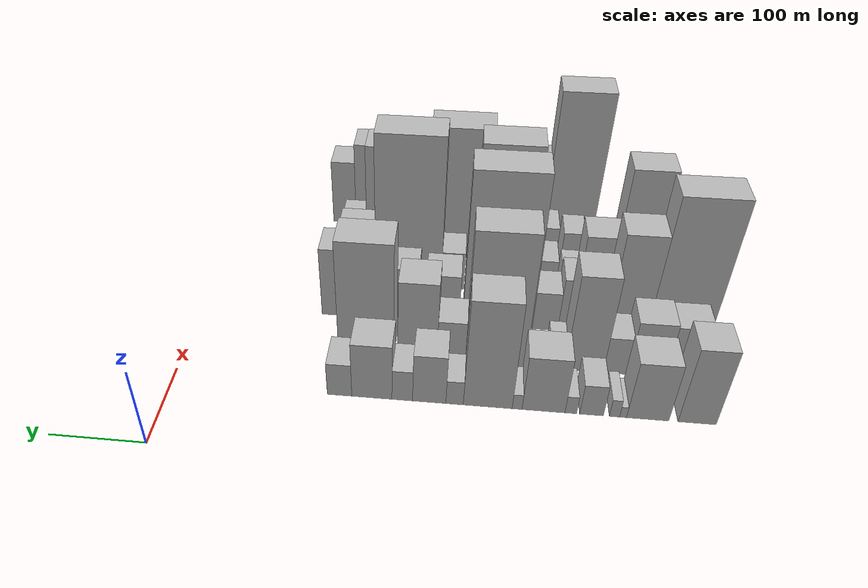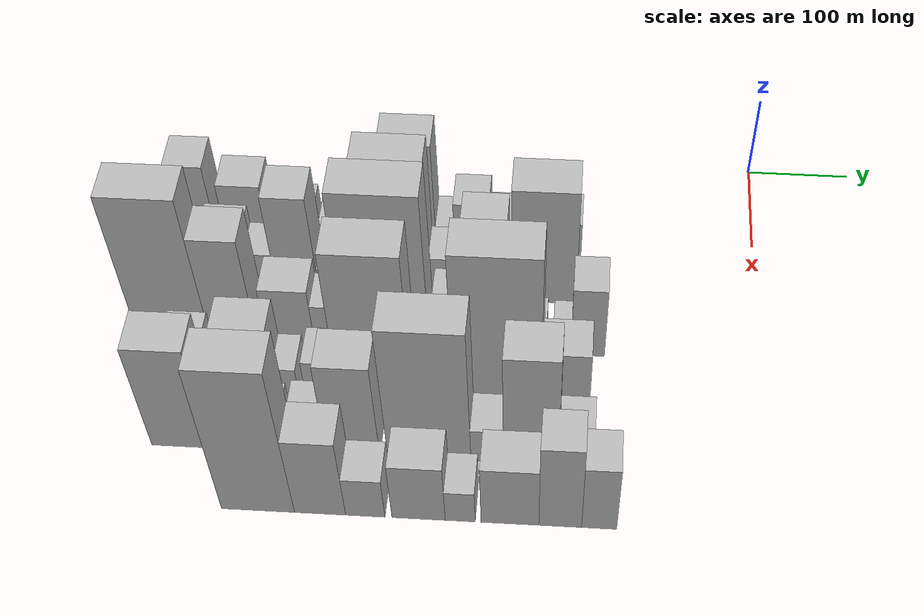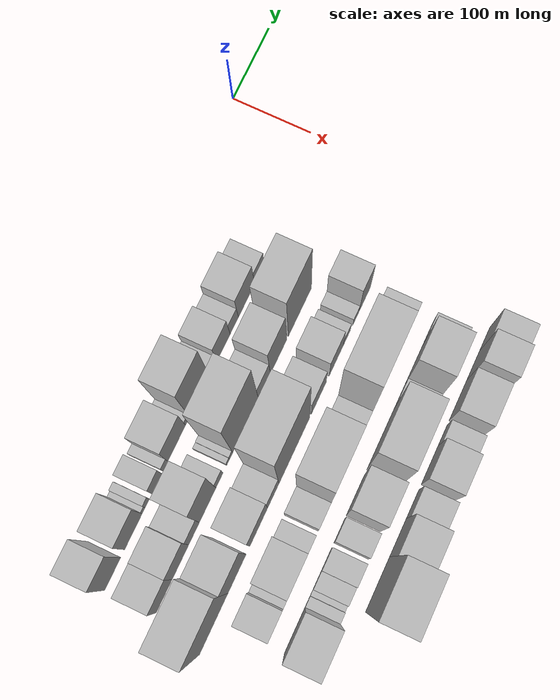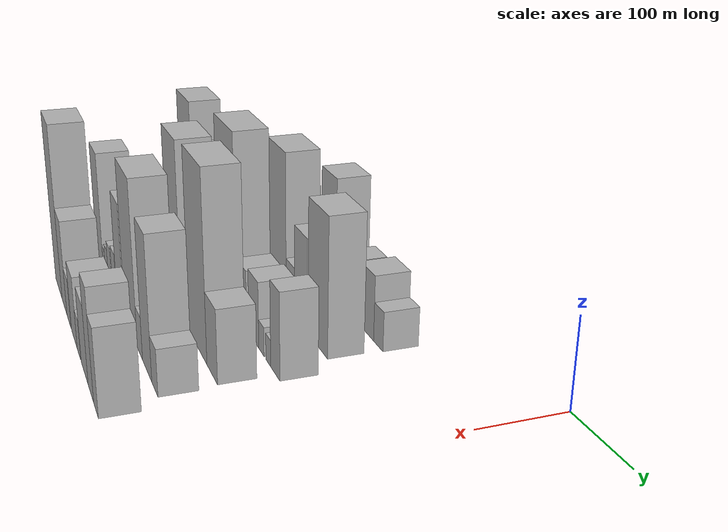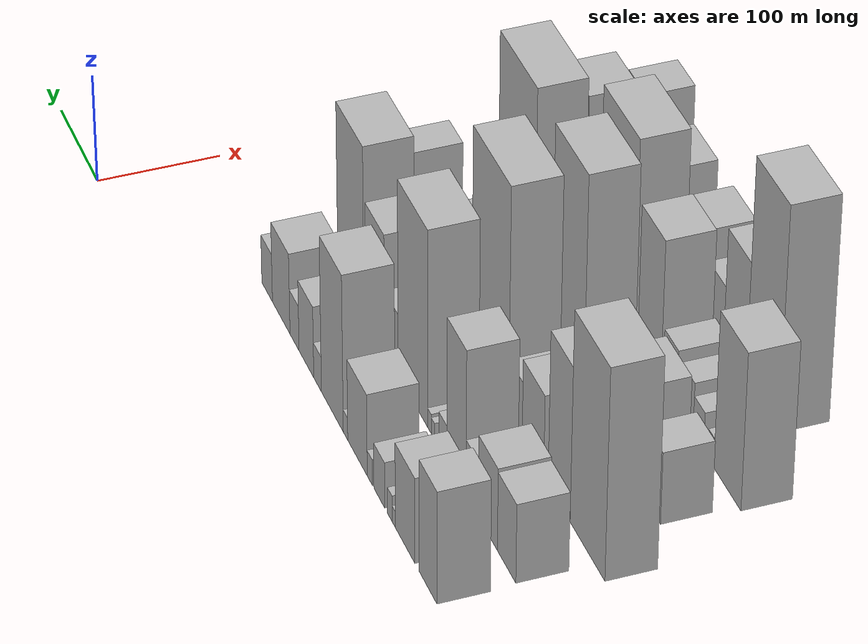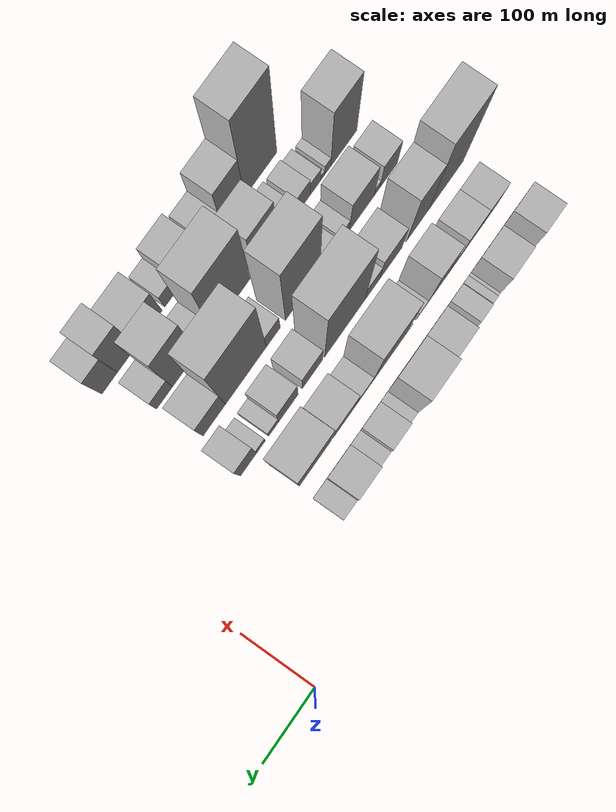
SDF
<sdf version="1.6">
 <world name="default">
  <model name="building_14">
   <static>1</static>
   <pose>100.0000 -543.6036 0 0.000000 0.000000 0.000000</pose>
   <link name="link">
    <pose>0 0 51.00 0 0 0</pose>
    <collision name="collision"><geometry><box><size>40.0000 37.5488 102.0000</size></box></geometry></collision>
    <visual name="visual">
     <cast_shadows>0</cast_shadows>
     <geometry><box><size>40.0000 37.5488 102.0000</size></box></geometry>
     <material>
      <script>
       <uri>model://HANNAS_wall/materials/scripts</uri>
       <uri>model://HANNAS_wall/materials/textures</uri>
       <name>vrc/HANNAS_wall</name>
      </script>
     </material>
    </visual>
   </link>
  </model>
  <model name="building_15">
   <static>1</static>
   <pose>100.0000 -494.8130 0 0.000000 0.000000 0.000000</pose>
   <link name="link">
    <pose>0 0 39.00 0 0 0</pose>
    <collision name="collision"><geometry><box><size>40.0000 42.0324 78.0000</size></box></geometry></collision>
    <visual name="visual">
     <cast_shadows>0</cast_shadows>
     <geometry><box><size>40.0000 42.0324 78.0000</size></box></geometry>
     <material>
      <script>
       <uri>model://HANNAS_wall/materials/scripts</uri>
       <uri>model://HANNAS_wall/materials/textures</uri>
       <name>vrc/HANNAS_wall</name>
      </script>
     </material>
    </visual>
   </link>
  </model>
  <model name="building_16">
   <static>1</static>
   <pose>100.0000 -470.3629 0 0.000000 0.000000 0.000000</pose>
   <link name="link">
    <pose>0 0 7.50 0 0 0</pose>
    <collision name="collision"><geometry><box><size>40.0000 6.8678 15.0000</size></box></geometry></collision>
    <visual name="visual">
     <cast_shadows>0</cast_shadows>
     <geometry><box><size>40.0000 6.8678 15.0000</size></box></geometry>
     <material>
      <script>
       <uri>model://HANNAS_wall/materials/scripts</uri>
       <uri>model://HANNAS_wall/materials/textures</uri>
       <name>vrc/HANNAS_wall</name>
      </script>
     </material>
    </visual>
   </link>
  </model>
  <model name="building_17">
   <static>1</static>
   <pose>100.0000 -461.8193 0 0.000000 0.000000 0.000000</pose>
   <link name="link">
    <pose>0 0 12.00 0 0 0</pose>
    <collision name="collision"><geometry><box><size>40.0000 10.2193 24.0000</size></box></geometry></collision>
    <visual name="visual">
     <cast_shadows>0</cast_shadows>
     <geometry><box><size>40.0000 10.2193 24.0000</size></box></geometry>
     <material>
      <script>
       <uri>model://HANNAS_wall/materials/scripts</uri>
       <uri>model://HANNAS_wall/materials/textures</uri>
       <name>vrc/HANNAS_wall</name>
      </script>
     </material>
    </visual>
   </link>
  </model>
  <model name="building_18">
   <static>1</static>
   <pose>100.0000 -438.7839 0 0.000000 0.000000 0.000000</pose>
   <link name="link">
    <pose>0 0 21.00 0 0 0</pose>
    <collision name="collision"><geometry><box><size>40.0000 23.8515 42.0000</size></box></geometry></collision>
    <visual name="visual">
     <cast_shadows>0</cast_shadows>
     <geometry><box><size>40.0000 23.8515 42.0000</size></box></geometry>
     <material>
      <script>
       <uri>model://HANNAS_wall/materials/scripts</uri>
       <uri>model://HANNAS_wall/materials/textures</uri>
       <name>vrc/HANNAS_wall</name>
      </script>
     </material>
    </visual>
   </link>
  </model>
  <model name="building_19">
   <static>1</static>
   <pose>100.0000 -417.9926 0 0.000000 0.000000 0.000000</pose>
   <link name="link">
    <pose>0 0 12.00 0 0 0</pose>
    <collision name="collision"><geometry><box><size>40.0000 11.7311 24.0000</size></box></geometry></collision>
    <visual name="visual">
     <cast_shadows>0</cast_shadows>
     <geometry><box><size>40.0000 11.7311 24.0000</size></box></geometry>
     <material>
      <script>
       <uri>model://HANNAS_wall/materials/scripts</uri>
       <uri>model://HANNAS_wall/materials/textures</uri>
       <name>vrc/HANNAS_wall</name>
      </script>
     </material>
    </visual>
   </link>
  </model>
  <model name="building_20">
   <static>1</static>
   <pose>100.0000 -390.3677 0 0.000000 0.000000 0.000000</pose>
   <link name="link">
    <pose>0 0 37.50 0 0 0</pose>
    <collision name="collision"><geometry><box><size>40.0000 43.5187 75.0000</size></box></geometry></collision>
    <visual name="visual">
     <cast_shadows>0</cast_shadows>
     <geometry><box><size>40.0000 43.5187 75.0000</size></box></geometry>
     <material>
      <script>
       <uri>model://HANNAS_wall/materials/scripts</uri>
       <uri>model://HANNAS_wall/materials/textures</uri>
       <name>vrc/HANNAS_wall</name>
      </script>
     </material>
    </visual>
   </link>
  </model>
  <model name="building_21">
   <static>1</static>
   <pose>100.0000 -363.5932 0 0.000000 0.000000 0.000000</pose>
   <link name="link">
    <pose>0 0 10.50 0 0 0</pose>
    <collision name="collision"><geometry><box><size>40.0000 10.0303 21.0000</size></box></geometry></collision>
    <visual name="visual">
     <cast_shadows>0</cast_shadows>
     <geometry><box><size>40.0000 10.0303 21.0000</size></box></geometry>
     <material>
      <script>
       <uri>model://HANNAS_wall/materials/scripts</uri>
       <uri>model://HANNAS_wall/materials/textures</uri>
       <name>vrc/HANNAS_wall</name>
      </script>
     </material>
    </visual>
   </link>
  </model>
  <model name="building_22">
   <static>1</static>
   <pose>100.0000 -333.5558 0 0.000000 0.000000 0.000000</pose>
   <link name="link">
    <pose>0 0 72.00 0 0 0</pose>
    <collision name="collision"><geometry><box><size>40.0000 50.0446 144.0000</size></box></geometry></collision>
    <visual name="visual">
     <cast_shadows>0</cast_shadows>
     <geometry><box><size>40.0000 50.0446 144.0000</size></box></geometry>
     <material>
      <script>
       <uri>model://HANNAS_wall/materials/scripts</uri>
       <uri>model://HANNAS_wall/materials/textures</uri>
       <name>vrc/HANNAS_wall</name>
      </script>
     </material>
    </visual>
   </link>
  </model>
  <model name="building_23">
   <static>1</static>
   <pose>100.0000 -299.5866 0 0.000000 0.000000 0.000000</pose>
   <link name="link">
    <pose>0 0 16.50 0 0 0</pose>
    <collision name="collision"><geometry><box><size>40.0000 17.8937 33.0000</size></box></geometry></collision>
    <visual name="visual">
     <cast_shadows>0</cast_shadows>
     <geometry><box><size>40.0000 17.8937 33.0000</size></box></geometry>
     <material>
      <script>
       <uri>model://HANNAS_wall/materials/scripts</uri>
       <uri>model://HANNAS_wall/materials/textures</uri>
       <name>vrc/HANNAS_wall</name>
      </script>
     </material>
    </visual>
   </link>
  </model>
  <model name="building_24">
   <static>1</static>
   <pose>100.0000 -273.4221 0 0.000000 0.000000 0.000000</pose>
   <link name="link">
    <pose>0 0 33.00 0 0 0</pose>
    <collision name="collision"><geometry><box><size>40.0000 34.4352 66.0000</size></box></geometry></collision>
    <visual name="visual">
     <cast_shadows>0</cast_shadows>
     <geometry><box><size>40.0000 34.4352 66.0000</size></box></geometry>
     <material>
      <script>
       <uri>model://HANNAS_wall/materials/scripts</uri>
       <uri>model://HANNAS_wall/materials/textures</uri>
       <name>vrc/HANNAS_wall</name>
      </script>
     </material>
    </visual>
   </link>
  </model>
  <model name="building_25">
   <static>1</static>
   <pose>100.0000 -245.4888 0 0.000000 0.000000 0.000000</pose>
   <link name="link">
    <pose>0 0 21.00 0 0 0</pose>
    <collision name="collision"><geometry><box><size>40.0000 21.4315 42.0000</size></box></geometry></collision>
    <visual name="visual">
     <cast_shadows>0</cast_shadows>
     <geometry><box><size>40.0000 21.4315 42.0000</size></box></geometry>
     <material>
      <script>
       <uri>model://HANNAS_wall/materials/scripts</uri>
       <uri>model://HANNAS_wall/materials/textures</uri>
       <name>vrc/HANNAS_wall</name>
      </script>
     </material>
    </visual>
   </link>
  </model>
  <model name="building_26">
   <static>1</static>
   <pose>100.0000 -213.7672 0 0.000000 0.000000 0.000000</pose>
   <link name="link">
    <pose>0 0 37.50 0 0 0</pose>
    <collision name="collision"><geometry><box><size>40.0000 42.0117 75.0000</size></box></geometry></collision>
    <visual name="visual">
     <cast_shadows>0</cast_shadows>
     <geometry><box><size>40.0000 42.0117 75.0000</size></box></geometry>
     <material>
      <script>
       <uri>model://HANNAS_wall/materials/scripts</uri>
       <uri>model://HANNAS_wall/materials/textures</uri>
       <name>vrc/HANNAS_wall</name>
      </script>
     </material>
    </visual>
   </link>
  </model>
  <model name="building_27">
   <static>1</static>
   <pose>100.0000 -179.8913 0 0.000000 0.000000 0.000000</pose>
   <link name="link">
    <pose>0 0 22.50 0 0 0</pose>
    <collision name="collision"><geometry><box><size>40.0000 25.7401 45.0000</size></box></geometry></collision>
    <visual name="visual">
     <cast_shadows>0</cast_shadows>
     <geometry><box><size>40.0000 25.7401 45.0000</size></box></geometry>
     <material>
      <script>
       <uri>model://HANNAS_wall/materials/scripts</uri>
       <uri>model://HANNAS_wall/materials/textures</uri>
       <name>vrc/HANNAS_wall</name>
      </script>
     </material>
    </visual>
   </link>
  </model>
  <model name="building_75">
   <static>1</static>
   <pose>160.0000 -540.9956 0 0.000000 0.000000 0.000000</pose>
   <link name="link">
    <pose>0 0 36.00 0 0 0</pose>
    <collision name="collision"><geometry><box><size>40.0000 37.8072 72.0000</size></box></geometry></collision>
    <visual name="visual">
     <cast_shadows>0</cast_shadows>
     <geometry><box><size>40.0000 37.8072 72.0000</size></box></geometry>
     <material>
      <script>
       <uri>model://HANNAS_wall/materials/scripts</uri>
       <uri>model://HANNAS_wall/materials/textures</uri>
       <name>vrc/HANNAS_wall</name>
      </script>
     </material>
    </visual>
   </link>
  </model>
  <model name="building_76">
   <static>1</static>
   <pose>160.0000 -502.1628 0 0.000000 0.000000 0.000000</pose>
   <link name="link">
    <pose>0 0 37.50 0 0 0</pose>
    <collision name="collision"><geometry><box><size>40.0000 39.8583 75.0000</size></box></geometry></collision>
    <visual name="visual">
     <cast_shadows>0</cast_shadows>
     <geometry><box><size>40.0000 39.8583 75.0000</size></box></geometry>
     <material>
      <script>
       <uri>model://HANNAS_wall/materials/scripts</uri>
       <uri>model://HANNAS_wall/materials/textures</uri>
       <name>vrc/HANNAS_wall</name>
      </script>
     </material>
    </visual>
   </link>
  </model>
  <model name="building_77">
   <static>1</static>
   <pose>160.0000 -469.2686 0 0.000000 0.000000 0.000000</pose>
   <link name="link">
    <pose>0 0 25.50 0 0 0</pose>
    <collision name="collision"><geometry><box><size>40.0000 25.9301 51.0000</size></box></geometry></collision>
    <visual name="visual">
     <cast_shadows>0</cast_shadows>
     <geometry><box><size>40.0000 25.9301 51.0000</size></box></geometry>
     <material>
      <script>
       <uri>model://HANNAS_wall/materials/scripts</uri>
       <uri>model://HANNAS_wall/materials/textures</uri>
       <name>vrc/HANNAS_wall</name>
      </script>
     </material>
    </visual>
   </link>
  </model>
  <model name="building_78">
   <static>1</static>
   <pose>160.0000 -435.9990 0 0.000000 0.000000 0.000000</pose>
   <link name="link">
    <pose>0 0 66.00 0 0 0</pose>
    <collision name="collision"><geometry><box><size>40.0000 40.6092 132.0000</size></box></geometry></collision>
    <visual name="visual">
     <cast_shadows>0</cast_shadows>
     <geometry><box><size>40.0000 40.6092 132.0000</size></box></geometry>
     <material>
      <script>
       <uri>model://HANNAS_wall/materials/scripts</uri>
       <uri>model://HANNAS_wall/materials/textures</uri>
       <name>vrc/HANNAS_wall</name>
      </script>
     </material>
    </visual>
   </link>
  </model>
  <model name="building_79">
   <static>1</static>
   <pose>160.0000 -406.8675 0 0.000000 0.000000 0.000000</pose>
   <link name="link">
    <pose>0 0 16.50 0 0 0</pose>
    <collision name="collision"><geometry><box><size>40.0000 17.6538 33.0000</size></box></geometry></collision>
    <visual name="visual">
     <cast_shadows>0</cast_shadows>
     <geometry><box><size>40.0000 17.6538 33.0000</size></box></geometry>
     <material>
      <script>
       <uri>model://HANNAS_wall/materials/scripts</uri>
       <uri>model://HANNAS_wall/materials/textures</uri>
       <name>vrc/HANNAS_wall</name>
      </script>
     </material>
    </visual>
   </link>
  </model>
  <model name="building_80">
   <static>1</static>
   <pose>160.0000 -385.4229 0 0.000000 0.000000 0.000000</pose>
   <link name="link">
    <pose>0 0 7.50 0 0 0</pose>
    <collision name="collision"><geometry><box><size>40.0000 7.2354 15.0000</size></box></geometry></collision>
    <visual name="visual">
     <cast_shadows>0</cast_shadows>
     <geometry><box><size>40.0000 7.2354 15.0000</size></box></geometry>
     <material>
      <script>
       <uri>model://HANNAS_wall/materials/scripts</uri>
       <uri>model://HANNAS_wall/materials/textures</uri>
       <name>vrc/HANNAS_wall</name>
      </script>
     </material>
    </visual>
   </link>
  </model>
  <model name="building_81">
   <static>1</static>
   <pose>160.0000 -377.8117 0 0.000000 0.000000 0.000000</pose>
   <link name="link">
    <pose>0 0 9.00 0 0 0</pose>
    <collision name="collision"><geometry><box><size>40.0000 7.9869 18.0000</size></box></geometry></collision>
    <visual name="visual">
     <cast_shadows>0</cast_shadows>
     <geometry><box><size>40.0000 7.9869 18.0000</size></box></geometry>
     <material>
      <script>
       <uri>model://HANNAS_wall/materials/scripts</uri>
       <uri>model://HANNAS_wall/materials/textures</uri>
       <name>vrc/HANNAS_wall</name>
      </script>
     </material>
    </visual>
   </link>
  </model>
  <model name="building_82">
   <static>1</static>
   <pose>160.0000 -341.2182 0 0.000000 0.000000 0.000000</pose>
   <link name="link">
    <pose>0 0 90.00 0 0 0</pose>
    <collision name="collision"><geometry><box><size>40.0000 65.2001 180.0000</size></box></geometry></collision>
    <visual name="visual">
     <cast_shadows>0</cast_shadows>
     <geometry><box><size>40.0000 65.2001 180.0000</size></box></geometry>
     <material>
      <script>
       <uri>model://HANNAS_wall/materials/scripts</uri>
       <uri>model://HANNAS_wall/materials/textures</uri>
       <name>vrc/HANNAS_wall</name>
      </script>
     </material>
    </visual>
   </link>
  </model>
  <model name="building_83">
   <static>1</static>
   <pose>160.0000 -293.2562 0 0.000000 0.000000 0.000000</pose>
   <link name="link">
    <pose>0 0 28.50 0 0 0</pose>
    <collision name="collision"><geometry><box><size>40.0000 30.7239 57.0000</size></box></geometry></collision>
    <visual name="visual">
     <cast_shadows>0</cast_shadows>
     <geometry><box><size>40.0000 30.7239 57.0000</size></box></geometry>
     <material>
      <script>
       <uri>model://HANNAS_wall/materials/scripts</uri>
       <uri>model://HANNAS_wall/materials/textures</uri>
       <name>vrc/HANNAS_wall</name>
      </script>
     </material>
    </visual>
   </link>
  </model>
  <model name="building_84">
   <static>1</static>
   <pose>160.0000 -256.4339 0 0.000000 0.000000 0.000000</pose>
   <link name="link">
    <pose>0 0 54.00 0 0 0</pose>
    <collision name="collision"><geometry><box><size>40.0000 42.9209 108.0000</size></box></geometry></collision>
    <visual name="visual">
     <cast_shadows>0</cast_shadows>
     <geometry><box><size>40.0000 42.9209 108.0000</size></box></geometry>
     <material>
      <script>
       <uri>model://HANNAS_wall/materials/scripts</uri>
       <uri>model://HANNAS_wall/materials/textures</uri>
       <name>vrc/HANNAS_wall</name>
      </script>
     </material>
    </visual>
   </link>
  </model>
  <model name="building_85">
   <static>1</static>
   <pose>160.0000 -200.3898 0 0.000000 0.000000 0.000000</pose>
   <link name="link">
    <pose>0 0 78.00 0 0 0</pose>
    <collision name="collision"><geometry><box><size>40.0000 61.1672 156.0000</size></box></geometry></collision>
    <visual name="visual">
     <cast_shadows>0</cast_shadows>
     <geometry><box><size>40.0000 61.1672 156.0000</size></box></geometry>
     <material>
      <script>
       <uri>model://HANNAS_wall/materials/scripts</uri>
       <uri>model://HANNAS_wall/materials/textures</uri>
       <name>vrc/HANNAS_wall</name>
      </script>
     </material>
    </visual>
   </link>
  </model>
  <model name="building_128">
   <static>1</static>
   <pose>220.0000 -544.4309 0 0.000000 0.000000 0.000000</pose>
   <link name="link">
    <pose>0 0 96.00 0 0 0</pose>
    <collision name="collision"><geometry><box><size>40.0000 69.2378 192.0000</size></box></geometry></collision>
    <visual name="visual">
     <cast_shadows>0</cast_shadows>
     <geometry><box><size>40.0000 69.2378 192.0000</size></box></geometry>
     <material>
      <script>
       <uri>model://HANNAS_wall/materials/scripts</uri>
       <uri>model://HANNAS_wall/materials/textures</uri>
       <name>vrc/HANNAS_wall</name>
      </script>
     </material>
    </visual>
   </link>
  </model>
  <model name="building_129">
   <static>1</static>
   <pose>220.0000 -487.5143 0 0.000000 0.000000 0.000000</pose>
   <link name="link">
    <pose>0 0 70.50 0 0 0</pose>
    <collision name="collision"><geometry><box><size>40.0000 44.5955 141.0000</size></box></geometry></collision>
    <visual name="visual">
     <cast_shadows>0</cast_shadows>
     <geometry><box><size>40.0000 44.5955 141.0000</size></box></geometry>
     <material>
      <script>
       <uri>model://HANNAS_wall/materials/scripts</uri>
       <uri>model://HANNAS_wall/materials/textures</uri>
       <name>vrc/HANNAS_wall</name>
      </script>
     </material>
    </visual>
   </link>
  </model>
  <model name="building_130">
   <static>1</static>
   <pose>220.0000 -433.8266 0 0.000000 0.000000 0.000000</pose>
   <link name="link">
    <pose>0 0 37.50 0 0 0</pose>
    <collision name="collision"><geometry><box><size>40.0000 44.7798 75.0000</size></box></geometry></collision>
    <visual name="visual">
     <cast_shadows>0</cast_shadows>
     <geometry><box><size>40.0000 44.7798 75.0000</size></box></geometry>
     <material>
      <script>
       <uri>model://HANNAS_wall/materials/scripts</uri>
       <uri>model://HANNAS_wall/materials/textures</uri>
       <name>vrc/HANNAS_wall</name>
      </script>
     </material>
    </visual>
   </link>
  </model>
  <model name="building_131">
   <static>1</static>
   <pose>220.0000 -397.1282 0 0.000000 0.000000 0.000000</pose>
   <link name="link">
    <pose>0 0 27.00 0 0 0</pose>
    <collision name="collision"><geometry><box><size>40.0000 28.6171 54.0000</size></box></geometry></collision>
    <visual name="visual">
     <cast_shadows>0</cast_shadows>
     <geometry><box><size>40.0000 28.6171 54.0000</size></box></geometry>
     <material>
      <script>
       <uri>model://HANNAS_wall/materials/scripts</uri>
       <uri>model://HANNAS_wall/materials/textures</uri>
       <name>vrc/HANNAS_wall</name>
      </script>
     </material>
    </visual>
   </link>
  </model>
  <model name="building_132">
   <static>1</static>
   <pose>220.0000 -343.2334 0 0.000000 0.000000 0.000000</pose>
   <link name="link">
    <pose>0 0 105.00 0 0 0</pose>
    <collision name="collision"><geometry><box><size>40.0000 79.1724 210.0000</size></box></geometry></collision>
    <visual name="visual">
     <cast_shadows>0</cast_shadows>
     <geometry><box><size>40.0000 79.1724 210.0000</size></box></geometry>
     <material>
      <script>
       <uri>model://HANNAS_wall/materials/scripts</uri>
       <uri>model://HANNAS_wall/materials/textures</uri>
       <name>vrc/HANNAS_wall</name>
      </script>
     </material>
    </visual>
   </link>
  </model>
  <model name="building_133">
   <static>1</static>
   <pose>220.0000 -280.1556 0 0.000000 0.000000 0.000000</pose>
   <link name="link">
    <pose>0 0 34.50 0 0 0</pose>
    <collision name="collision"><geometry><box><size>40.0000 38.9832 69.0000</size></box></geometry></collision>
    <visual name="visual">
     <cast_shadows>0</cast_shadows>
     <geometry><box><size>40.0000 38.9832 69.0000</size></box></geometry>
     <material>
      <script>
       <uri>model://HANNAS_wall/materials/scripts</uri>
       <uri>model://HANNAS_wall/materials/textures</uri>
       <name>vrc/HANNAS_wall</name>
      </script>
     </material>
    </visual>
   </link>
  </model>
  <model name="building_134">
   <static>1</static>
   <pose>220.0000 -233.8857 0 0.000000 0.000000 0.000000</pose>
   <link name="link">
    <pose>0 0 37.50 0 0 0</pose>
    <collision name="collision"><geometry><box><size>40.0000 37.5566 75.0000</size></box></geometry></collision>
    <visual name="visual">
     <cast_shadows>0</cast_shadows>
     <geometry><box><size>40.0000 37.5566 75.0000</size></box></geometry>
     <material>
      <script>
       <uri>model://HANNAS_wall/materials/scripts</uri>
       <uri>model://HANNAS_wall/materials/textures</uri>
       <name>vrc/HANNAS_wall</name>
      </script>
     </material>
    </visual>
   </link>
  </model>
  <model name="building_135">
   <static>1</static>
   <pose>220.0000 -205.3285 0 0.000000 0.000000 0.000000</pose>
   <link name="link">
    <pose>0 0 16.50 0 0 0</pose>
    <collision name="collision"><geometry><box><size>40.0000 19.5576 33.0000</size></box></geometry></collision>
    <visual name="visual">
     <cast_shadows>0</cast_shadows>
     <geometry><box><size>40.0000 19.5576 33.0000</size></box></geometry>
     <material>
      <script>
       <uri>model://HANNAS_wall/materials/scripts</uri>
       <uri>model://HANNAS_wall/materials/textures</uri>
       <name>vrc/HANNAS_wall</name>
      </script>
     </material>
    </visual>
   </link>
  </model>
  <model name="building_136">
   <static>1</static>
   <pose>220.0000 -181.0834 0 0.000000 0.000000 0.000000</pose>
   <link name="link">
    <pose>0 0 15.00 0 0 0</pose>
    <collision name="collision"><geometry><box><size>40.0000 16.9326 30.0000</size></box></geometry></collision>
    <visual name="visual">
     <cast_shadows>0</cast_shadows>
     <geometry><box><size>40.0000 16.9326 30.0000</size></box></geometry>
     <material>
      <script>
       <uri>model://HANNAS_wall/materials/scripts</uri>
       <uri>model://HANNAS_wall/materials/textures</uri>
       <name>vrc/HANNAS_wall</name>
      </script>
     </material>
    </visual>
   </link>
  </model>
  <model name="building_137">
   <static>1</static>
   <pose>220.0000 -157.0367 0 0.000000 0.000000 0.000000</pose>
   <link name="link">
    <pose>0 0 48.00 0 0 0</pose>
    <collision name="collision"><geometry><box><size>40.0000 31.1607 96.0000</size></box></geometry></collision>
    <visual name="visual">
     <cast_shadows>0</cast_shadows>
     <geometry><box><size>40.0000 31.1607 96.0000</size></box></geometry>
     <material>
      <script>
       <uri>model://HANNAS_wall/materials/scripts</uri>
       <uri>model://HANNAS_wall/materials/textures</uri>
       <name>vrc/HANNAS_wall</name>
      </script>
     </material>
    </visual>
   </link>
  </model>
  <model name="building_178">
   <static>1</static>
   <pose>280.0000 -516.5904 0 0.000000 0.000000 0.000000</pose>
   <link name="link">
    <pose>0 0 33.00 0 0 0</pose>
    <collision name="collision"><geometry><box><size>40.0000 34.9567 66.0000</size></box></geometry></collision>
    <visual name="visual">
     <cast_shadows>0</cast_shadows>
     <geometry><box><size>40.0000 34.9567 66.0000</size></box></geometry>
     <material>
      <script>
       <uri>model://HANNAS_wall/materials/scripts</uri>
       <uri>model://HANNAS_wall/materials/textures</uri>
       <name>vrc/HANNAS_wall</name>
      </script>
     </material>
    </visual>
   </link>
  </model>
  <model name="building_179">
   <static>1</static>
   <pose>280.0000 -493.4835 0 0.000000 0.000000 0.000000</pose>
   <link name="link">
    <pose>0 0 12.00 0 0 0</pose>
    <collision name="collision"><geometry><box><size>40.0000 11.2572 24.0000</size></box></geometry></collision>
    <visual name="visual">
     <cast_shadows>0</cast_shadows>
     <geometry><box><size>40.0000 11.2572 24.0000</size></box></geometry>
     <material>
      <script>
       <uri>model://HANNAS_wall/materials/scripts</uri>
       <uri>model://HANNAS_wall/materials/textures</uri>
       <name>vrc/HANNAS_wall</name>
      </script>
     </material>
    </visual>
   </link>
  </model>
  <model name="building_180">
   <static>1</static>
   <pose>280.0000 -462.8827 0 0.000000 0.000000 0.000000</pose>
   <link name="link">
    <pose>0 0 45.00 0 0 0</pose>
    <collision name="collision"><geometry><box><size>40.0000 49.9444 90.0000</size></box></geometry></collision>
    <visual name="visual">
     <cast_shadows>0</cast_shadows>
     <geometry><box><size>40.0000 49.9444 90.0000</size></box></geometry>
     <material>
      <script>
       <uri>model://HANNAS_wall/materials/scripts</uri>
       <uri>model://HANNAS_wall/materials/textures</uri>
       <name>vrc/HANNAS_wall</name>
      </script>
     </material>
    </visual>
   </link>
  </model>
  <model name="building_181">
   <static>1</static>
   <pose>280.0000 -427.3814 0 0.000000 0.000000 0.000000</pose>
   <link name="link">
    <pose>0 0 19.50 0 0 0</pose>
    <collision name="collision"><geometry><box><size>40.0000 21.0582 39.0000</size></box></geometry></collision>
    <visual name="visual">
     <cast_shadows>0</cast_shadows>
     <geometry><box><size>40.0000 21.0582 39.0000</size></box></geometry>
     <material>
      <script>
       <uri>model://HANNAS_wall/materials/scripts</uri>
       <uri>model://HANNAS_wall/materials/textures</uri>
       <name>vrc/HANNAS_wall</name>
      </script>
     </material>
    </visual>
   </link>
  </model>
  <model name="building_182">
   <static>1</static>
   <pose>280.0000 -395.6734 0 0.000000 0.000000 0.000000</pose>
   <link name="link">
    <pose>0 0 25.50 0 0 0</pose>
    <collision name="collision"><geometry><box><size>40.0000 30.3578 51.0000</size></box></geometry></collision>
    <visual name="visual">
     <cast_shadows>0</cast_shadows>
     <geometry><box><size>40.0000 30.3578 51.0000</size></box></geometry>
     <material>
      <script>
       <uri>model://HANNAS_wall/materials/scripts</uri>
       <uri>model://HANNAS_wall/materials/textures</uri>
       <name>vrc/HANNAS_wall</name>
      </script>
     </material>
    </visual>
   </link>
  </model>
  <model name="building_183">
   <static>1</static>
   <pose>280.0000 -346.8152 0 0.000000 0.000000 0.000000</pose>
   <link name="link">
    <pose>0 0 102.00 0 0 0</pose>
    <collision name="collision"><geometry><box><size>40.0000 67.3586 204.0000</size></box></geometry></collision>
    <visual name="visual">
     <cast_shadows>0</cast_shadows>
     <geometry><box><size>40.0000 67.3586 204.0000</size></box></geometry>
     <material>
      <script>
       <uri>model://HANNAS_wall/materials/scripts</uri>
       <uri>model://HANNAS_wall/materials/textures</uri>
       <name>vrc/HANNAS_wall</name>
      </script>
     </material>
    </visual>
   </link>
  </model>
  <model name="building_184">
   <static>1</static>
   <pose>280.0000 -289.5358 0 0.000000 0.000000 0.000000</pose>
   <link name="link">
    <pose>0 0 27.00 0 0 0</pose>
    <collision name="collision"><geometry><box><size>40.0000 27.2003 54.0000</size></box></geometry></collision>
    <visual name="visual">
     <cast_shadows>0</cast_shadows>
     <geometry><box><size>40.0000 27.2003 54.0000</size></box></geometry>
     <material>
      <script>
       <uri>model://HANNAS_wall/materials/scripts</uri>
       <uri>model://HANNAS_wall/materials/textures</uri>
       <name>vrc/HANNAS_wall</name>
      </script>
     </material>
    </visual>
   </link>
  </model>
  <model name="building_185">
   <static>1</static>
   <pose>280.0000 -236.4714 0 0.000000 0.000000 0.000000</pose>
   <link name="link">
    <pose>0 0 105.00 0 0 0</pose>
    <collision name="collision"><geometry><box><size>40.0000 78.9284 210.0000</size></box></geometry></collision>
    <visual name="visual">
     <cast_shadows>0</cast_shadows>
     <geometry><box><size>40.0000 78.9284 210.0000</size></box></geometry>
     <material>
      <script>
       <uri>model://HANNAS_wall/materials/scripts</uri>
       <uri>model://HANNAS_wall/materials/textures</uri>
       <name>vrc/HANNAS_wall</name>
      </script>
     </material>
    </visual>
   </link>
  </model>
  <model name="building_186">
   <static>1</static>
   <pose>280.0000 -175.3497 0 0.000000 0.000000 0.000000</pose>
   <link name="link">
    <pose>0 0 40.50 0 0 0</pose>
    <collision name="collision"><geometry><box><size>40.0000 43.3150 81.0000</size></box></geometry></collision>
    <visual name="visual">
     <cast_shadows>0</cast_shadows>
     <geometry><box><size>40.0000 43.3150 81.0000</size></box></geometry>
     <material>
      <script>
       <uri>model://HANNAS_wall/materials/scripts</uri>
       <uri>model://HANNAS_wall/materials/textures</uri>
       <name>vrc/HANNAS_wall</name>
      </script>
     </material>
    </visual>
   </link>
  </model>
  <model name="building_229">
   <static>1</static>
   <pose>340.0000 -513.4889 0 0.000000 0.000000 0.000000</pose>
   <link name="link">
    <pose>0 0 72.00 0 0 0</pose>
    <collision name="collision"><geometry><box><size>40.0000 51.7998 144.0000</size></box></geometry></collision>
    <visual name="visual">
     <cast_shadows>0</cast_shadows>
     <geometry><box><size>40.0000 51.7998 144.0000</size></box></geometry>
     <material>
      <script>
       <uri>model://HANNAS_wall/materials/scripts</uri>
       <uri>model://HANNAS_wall/materials/textures</uri>
       <name>vrc/HANNAS_wall</name>
      </script>
     </material>
    </visual>
   </link>
  </model>
  <model name="building_230">
   <static>1</static>
   <pose>340.0000 -481.3833 0 0.000000 0.000000 0.000000</pose>
   <link name="link">
    <pose>0 0 13.50 0 0 0</pose>
    <collision name="collision"><geometry><box><size>40.0000 12.4114 27.0000</size></box></geometry></collision>
    <visual name="visual">
     <cast_shadows>0</cast_shadows>
     <geometry><box><size>40.0000 12.4114 27.0000</size></box></geometry>
     <material>
      <script>
       <uri>model://HANNAS_wall/materials/scripts</uri>
       <uri>model://HANNAS_wall/materials/textures</uri>
       <name>vrc/HANNAS_wall</name>
      </script>
     </material>
    </visual>
   </link>
  </model>
  <model name="building_231">
   <static>1</static>
   <pose>340.0000 -471.5624 0 0.000000 0.000000 0.000000</pose>
   <link name="link">
    <pose>0 0 7.50 0 0 0</pose>
    <collision name="collision"><geometry><box><size>40.0000 7.2305 15.0000</size></box></geometry></collision>
    <visual name="visual">
     <cast_shadows>0</cast_shadows>
     <geometry><box><size>40.0000 7.2305 15.0000</size></box></geometry>
     <material>
      <script>
       <uri>model://HANNAS_wall/materials/scripts</uri>
       <uri>model://HANNAS_wall/materials/textures</uri>
       <name>vrc/HANNAS_wall</name>
      </script>
     </material>
    </visual>
   </link>
  </model>
  <model name="building_232">
   <static>1</static>
   <pose>340.0000 -457.5339 0 0.000000 0.000000 0.000000</pose>
   <link name="link">
    <pose>0 0 18.00 0 0 0</pose>
    <collision name="collision"><geometry><box><size>40.0000 20.8266 36.0000</size></box></geometry></collision>
    <visual name="visual">
     <cast_shadows>0</cast_shadows>
     <geometry><box><size>40.0000 20.8266 36.0000</size></box></geometry>
     <material>
      <script>
       <uri>model://HANNAS_wall/materials/scripts</uri>
       <uri>model://HANNAS_wall/materials/textures</uri>
       <name>vrc/HANNAS_wall</name>
      </script>
     </material>
    </visual>
   </link>
  </model>
  <model name="building_233">
   <static>1</static>
   <pose>340.0000 -434.0786 0 0.000000 0.000000 0.000000</pose>
   <link name="link">
    <pose>0 0 24.00 0 0 0</pose>
    <collision name="collision"><geometry><box><size>40.0000 26.0839 48.0000</size></box></geometry></collision>
    <visual name="visual">
     <cast_shadows>0</cast_shadows>
     <geometry><box><size>40.0000 26.0839 48.0000</size></box></geometry>
     <material>
      <script>
       <uri>model://HANNAS_wall/materials/scripts</uri>
       <uri>model://HANNAS_wall/materials/textures</uri>
       <name>vrc/HANNAS_wall</name>
      </script>
     </material>
    </visual>
   </link>
  </model>
  <model name="building_234">
   <static>1</static>
   <pose>340.0000 -401.2151 0 0.000000 0.000000 0.000000</pose>
   <link name="link">
    <pose>0 0 27.00 0 0 0</pose>
    <collision name="collision"><geometry><box><size>40.0000 27.6432 54.0000</size></box></geometry></collision>
    <visual name="visual">
     <cast_shadows>0</cast_shadows>
     <geometry><box><size>40.0000 27.6432 54.0000</size></box></geometry>
     <material>
      <script>
       <uri>model://HANNAS_wall/materials/scripts</uri>
       <uri>model://HANNAS_wall/materials/textures</uri>
       <name>vrc/HANNAS_wall</name>
      </script>
     </material>
    </visual>
   </link>
  </model>
  <model name="building_235">
   <static>1</static>
   <pose>340.0000 -359.8602 0 0.000000 0.000000 0.000000</pose>
   <link name="link">
    <pose>0 0 66.00 0 0 0</pose>
    <collision name="collision"><geometry><box><size>40.0000 47.0666 132.0000</size></box></geometry></collision>
    <visual name="visual">
     <cast_shadows>0</cast_shadows>
     <geometry><box><size>40.0000 47.0666 132.0000</size></box></geometry>
     <material>
      <script>
       <uri>model://HANNAS_wall/materials/scripts</uri>
       <uri>model://HANNAS_wall/materials/textures</uri>
       <name>vrc/HANNAS_wall</name>
      </script>
     </material>
    </visual>
   </link>
  </model>
  <model name="building_236">
   <static>1</static>
   <pose>340.0000 -292.6126 0 0.000000 0.000000 0.000000</pose>
   <link name="link">
    <pose>0 0 93.00 0 0 0</pose>
    <collision name="collision"><geometry><box><size>40.0000 73.4285 186.0000</size></box></geometry></collision>
    <visual name="visual">
     <cast_shadows>0</cast_shadows>
     <geometry><box><size>40.0000 73.4285 186.0000</size></box></geometry>
     <material>
      <script>
       <uri>model://HANNAS_wall/materials/scripts</uri>
       <uri>model://HANNAS_wall/materials/textures</uri>
       <name>vrc/HANNAS_wall</name>
      </script>
     </material>
    </visual>
   </link>
  </model>
  <model name="building_237">
   <static>1</static>
   <pose>340.0000 -241.5182 0 0.000000 0.000000 0.000000</pose>
   <link name="link">
    <pose>0 0 24.00 0 0 0</pose>
    <collision name="collision"><geometry><box><size>40.0000 28.7604 48.0000</size></box></geometry></collision>
    <visual name="visual">
     <cast_shadows>0</cast_shadows>
     <geometry><box><size>40.0000 28.7604 48.0000</size></box></geometry>
     <material>
      <script>
       <uri>model://HANNAS_wall/materials/scripts</uri>
       <uri>model://HANNAS_wall/materials/textures</uri>
       <name>vrc/HANNAS_wall</name>
      </script>
     </material>
    </visual>
   </link>
  </model>
  <model name="building_238">
   <static>1</static>
   <pose>340.0000 -203.0333 0 0.000000 0.000000 0.000000</pose>
   <link name="link">
    <pose>0 0 78.00 0 0 0</pose>
    <collision name="collision"><geometry><box><size>40.0000 48.2094 156.0000</size></box></geometry></collision>
    <visual name="visual">
     <cast_shadows>0</cast_shadows>
     <geometry><box><size>40.0000 48.2094 156.0000</size></box></geometry>
     <material>
      <script>
       <uri>model://HANNAS_wall/materials/scripts</uri>
       <uri>model://HANNAS_wall/materials/textures</uri>
       <name>vrc/HANNAS_wall</name>
      </script>
     </material>
    </visual>
   </link>
  </model>
  <model name="building_239">
   <static>1</static>
   <pose>340.0000 -163.6568 0 0.000000 0.000000 0.000000</pose>
   <link name="link">
    <pose>0 0 25.50 0 0 0</pose>
    <collision name="collision"><geometry><box><size>40.0000 30.5436 51.0000</size></box></geometry></collision>
    <visual name="visual">
     <cast_shadows>0</cast_shadows>
     <geometry><box><size>40.0000 30.5436 51.0000</size></box></geometry>
     <material>
      <script>
       <uri>model://HANNAS_wall/materials/scripts</uri>
       <uri>model://HANNAS_wall/materials/textures</uri>
       <name>vrc/HANNAS_wall</name>
      </script>
     </material>
    </visual>
   </link>
  </model>
  <model name="building_278">
   <static>1</static>
   <pose>400.0000 -434.5248 0 0.000000 0.000000 0.000000</pose>
   <link name="link">
    <pose>0 0 103.50 0 0 0</pose>
    <collision name="collision"><geometry><box><size>40.0000 63.1835 207.0000</size></box></geometry></collision>
    <visual name="visual">
     <cast_shadows>0</cast_shadows>
     <geometry><box><size>40.0000 63.1835 207.0000</size></box></geometry>
     <material>
      <script>
       <uri>model://HANNAS_wall/materials/scripts</uri>
       <uri>model://HANNAS_wall/materials/textures</uri>
       <name>vrc/HANNAS_wall</name>
      </script>
     </material>
    </visual>
   </link>
  </model>
  <model name="building_279">
   <static>1</static>
   <pose>400.0000 -380.8620 0 0.000000 0.000000 0.000000</pose>
   <link name="link">
    <pose>0 0 55.50 0 0 0</pose>
    <collision name="collision"><geometry><box><size>40.0000 44.1421 111.0000</size></box></geometry></collision>
    <visual name="visual">
     <cast_shadows>0</cast_shadows>
     <geometry><box><size>40.0000 44.1421 111.0000</size></box></geometry>
     <material>
      <script>
       <uri>model://HANNAS_wall/materials/scripts</uri>
       <uri>model://HANNAS_wall/materials/textures</uri>
       <name>vrc/HANNAS_wall</name>
      </script>
     </material>
    </visual>
   </link>
  </model>
  <model name="building_280">
   <static>1</static>
   <pose>400.0000 -341.8771 0 0.000000 0.000000 0.000000</pose>
   <link name="link">
    <pose>0 0 28.50 0 0 0</pose>
    <collision name="collision"><geometry><box><size>40.0000 33.8277 57.0000</size></box></geometry></collision>
    <visual name="visual">
     <cast_shadows>0</cast_shadows>
     <geometry><box><size>40.0000 33.8277 57.0000</size></box></geometry>
     <material>
      <script>
       <uri>model://HANNAS_wall/materials/scripts</uri>
       <uri>model://HANNAS_wall/materials/textures</uri>
       <name>vrc/HANNAS_wall</name>
      </script>
     </material>
    </visual>
   </link>
  </model>
  <model name="building_281">
   <static>1</static>
   <pose>400.0000 -296.0934 0 0.000000 0.000000 0.000000</pose>
   <link name="link">
    <pose>0 0 40.50 0 0 0</pose>
    <collision name="collision"><geometry><box><size>40.0000 45.7397 81.0000</size></box></geometry></collision>
    <visual name="visual">
     <cast_shadows>0</cast_shadows>
     <geometry><box><size>40.0000 45.7397 81.0000</size></box></geometry>
     <material>
      <script>
       <uri>model://HANNAS_wall/materials/scripts</uri>
       <uri>model://HANNAS_wall/materials/textures</uri>
       <name>vrc/HANNAS_wall</name>
      </script>
     </material>
    </visual>
   </link>
  </model>
  <model name="building_282">
   <static>1</static>
   <pose>400.0000 -260.3560 0 0.000000 0.000000 0.000000</pose>
   <link name="link">
    <pose>0 0 22.50 0 0 0</pose>
    <collision name="collision"><geometry><box><size>40.0000 25.7353 45.0000</size></box></geometry></collision>
    <visual name="visual">
     <cast_shadows>0</cast_shadows>
     <geometry><box><size>40.0000 25.7353 45.0000</size></box></geometry>
     <material>
      <script>
       <uri>model://HANNAS_wall/materials/scripts</uri>
       <uri>model://HANNAS_wall/materials/textures</uri>
       <name>vrc/HANNAS_wall</name>
      </script>
     </material>
    </visual>
   </link>
  </model>
  <model name="building_283">
   <static>1</static>
   <pose>400.0000 -217.7740 0 0.000000 0.000000 0.000000</pose>
   <link name="link">
    <pose>0 0 42.00 0 0 0</pose>
    <collision name="collision"><geometry><box><size>40.0000 49.4287 84.0000</size></box></geometry></collision>
    <visual name="visual">
     <cast_shadows>0</cast_shadows>
     <geometry><box><size>40.0000 49.4287 84.0000</size></box></geometry>
     <material>
      <script>
       <uri>model://HANNAS_wall/materials/scripts</uri>
       <uri>model://HANNAS_wall/materials/textures</uri>
       <name>vrc/HANNAS_wall</name>
      </script>
     </material>
    </visual>
   </link>
  </model>
  <model name="building_284">
   <static>1</static>
   <pose>400.0000 -174.8945 0 0.000000 0.000000 0.000000</pose>
   <link name="link">
    <pose>0 0 60.00 0 0 0</pose>
    <collision name="collision"><geometry><box><size>40.0000 36.3303 120.0000</size></box></geometry></collision>
    <visual name="visual">
     <cast_shadows>0</cast_shadows>
     <geometry><box><size>40.0000 36.3303 120.0000</size></box></geometry>
     <material>
      <script>
       <uri>model://HANNAS_wall/materials/scripts</uri>
       <uri>model://HANNAS_wall/materials/textures</uri>
       <name>vrc/HANNAS_wall</name>
      </script>
     </material>
    </visual>
   </link>
  </model>
  <model name="building_285">
   <static>1</static>
   <pose>400.0000 -141.7787 0 0.000000 0.000000 0.000000</pose>
   <link name="link">
    <pose>0 0 46.50 0 0 0</pose>
    <collision name="collision"><geometry><box><size>40.0000 29.9011 93.0000</size></box></geometry></collision>
    <visual name="visual">
     <cast_shadows>0</cast_shadows>
     <geometry><box><size>40.0000 29.9011 93.0000</size></box></geometry>
     <material>
      <script>
       <uri>model://HANNAS_wall/materials/scripts</uri>
       <uri>model://HANNAS_wall/materials/textures</uri>
       <name>vrc/HANNAS_wall</name>
      </script>
     </material>
    </visual>
   </link>
  </model>
 </world>
</sdf>
